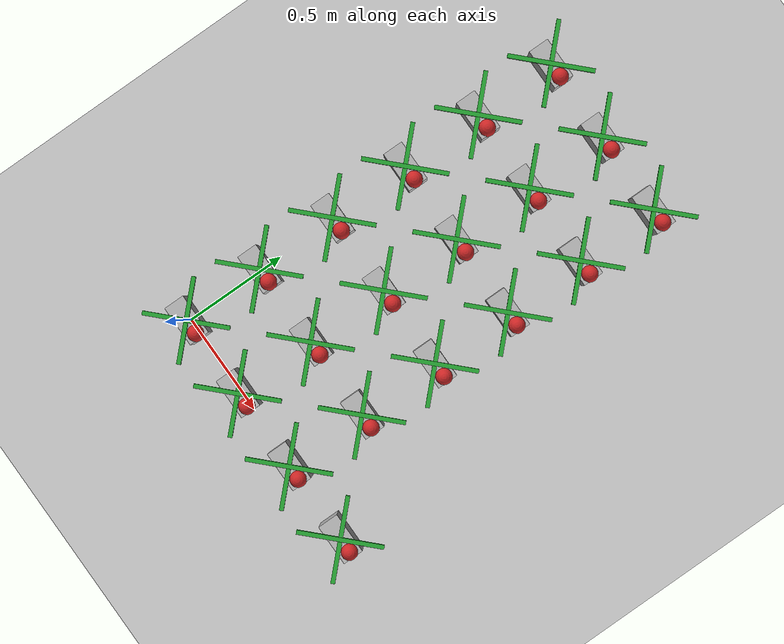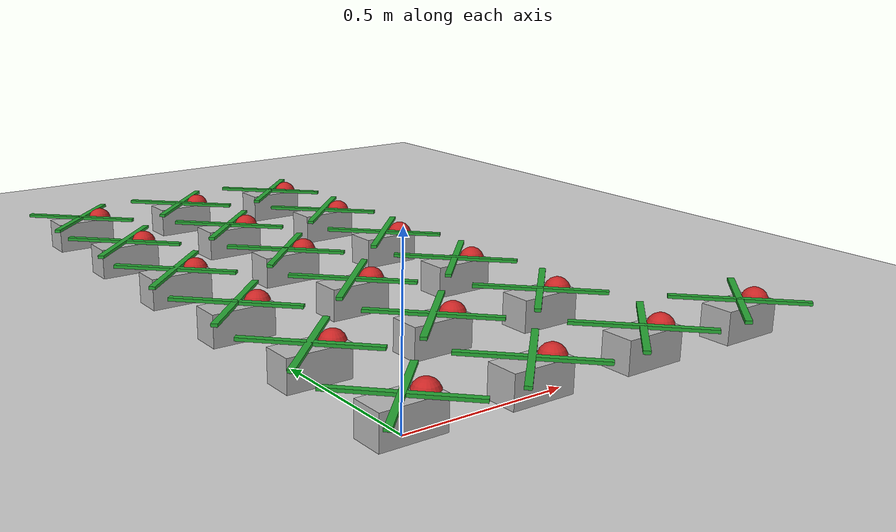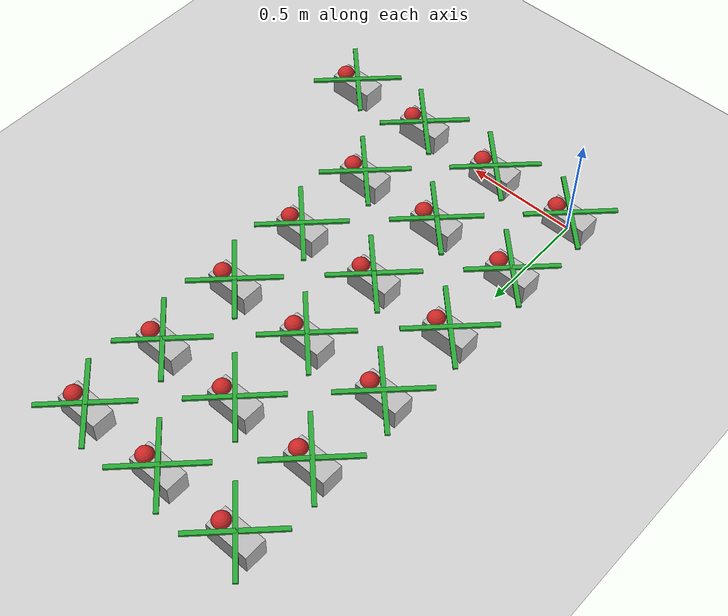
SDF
<sdf version="1.5">
 <world name="default">
  <model name="rotor_0">
   <pose>0.0 0.0 0.05 0 0 0</pose>
   <link name="link">
    <kinematic>true</kinematic>
    <gravity>false</gravity>
    <collision name="collision"><geometry><box><size>0.2 .1 .1</size></box></geometry></collision>
    <visual name="visual"><geometry><box><size>0.2 .1 .1</size></box></geometry></visual>
    <visual name="visual_front">
     <pose>0.07 0 0.04 0 0 0</pose>
     <geometry><sphere><radius>.04</radius></sphere></geometry>
     <material><script><name>Gazebo/Red</name></script></material>
    </visual>
    <visual name="visual_blade1">
     <pose>0 0 0.055 0 0 0.78539</pose>
     <geometry><box><size>.4 0.02 0.01</size></box></geometry>
     <material><script><name>Gazebo/Green</name></script></material>
    </visual>
    <visual name="visual_blade2">
     <pose>0 0 0.055 0 0 2.3562</pose>
     <geometry><box><size>.4 0.02 0.01</size></box></geometry>
     <material><script><name>Gazebo/Green</name></script></material>
    </visual>
   </link>
   <plugin name="swarm_controller_0" filename="libTeamControllerPlugin.so">
    <type>rotor</type>
    <address>192.168.2.1</address>
    <num_messages>1</num_messages>
   </plugin>
  </model>
  <model name="rotor_1">
   <pose>0.4 0.0 0.05 0 0 0</pose>
   <link name="link">
    <kinematic>true</kinematic>
    <gravity>false</gravity>
    <collision name="collision"><geometry><box><size>0.2 .1 .1</size></box></geometry></collision>
    <visual name="visual"><geometry><box><size>0.2 .1 .1</size></box></geometry></visual>
    <visual name="visual_front">
     <pose>0.07 0 0.04 0 0 0</pose>
     <geometry><sphere><radius>.04</radius></sphere></geometry>
     <material><script><name>Gazebo/Red</name></script></material>
    </visual>
    <visual name="visual_blade1">
     <pose>0 0 0.055 0 0 0.78539</pose>
     <geometry><box><size>.4 0.02 0.01</size></box></geometry>
     <material><script><name>Gazebo/Green</name></script></material>
    </visual>
    <visual name="visual_blade2">
     <pose>0 0 0.055 0 0 2.3562</pose>
     <geometry><box><size>.4 0.02 0.01</size></box></geometry>
     <material><script><name>Gazebo/Green</name></script></material>
    </visual>
   </link>
   <plugin name="swarm_controller_1" filename="libTeamControllerPlugin.so">
    <type>rotor</type>
    <address>192.168.2.2</address>
    <num_messages>1</num_messages>
   </plugin>
  </model>
  <model name="rotor_2">
   <pose>0.8 0.0 0.05 0 0 0</pose>
   <link name="link">
    <kinematic>true</kinematic>
    <gravity>false</gravity>
    <collision name="collision"><geometry><box><size>0.2 .1 .1</size></box></geometry></collision>
    <visual name="visual"><geometry><box><size>0.2 .1 .1</size></box></geometry></visual>
    <visual name="visual_front">
     <pose>0.07 0 0.04 0 0 0</pose>
     <geometry><sphere><radius>.04</radius></sphere></geometry>
     <material><script><name>Gazebo/Red</name></script></material>
    </visual>
    <visual name="visual_blade1">
     <pose>0 0 0.055 0 0 0.78539</pose>
     <geometry><box><size>.4 0.02 0.01</size></box></geometry>
     <material><script><name>Gazebo/Green</name></script></material>
    </visual>
    <visual name="visual_blade2">
     <pose>0 0 0.055 0 0 2.3562</pose>
     <geometry><box><size>.4 0.02 0.01</size></box></geometry>
     <material><script><name>Gazebo/Green</name></script></material>
    </visual>
   </link>
   <plugin name="swarm_controller_2" filename="libTeamControllerPlugin.so">
    <type>rotor</type>
    <address>192.168.2.3</address>
    <num_messages>1</num_messages>
   </plugin>
  </model>
  <model name="rotor_3">
   <pose>1.2000000000000002 0.0 0.05 0 0 0</pose>
   <link name="link">
    <kinematic>true</kinematic>
    <gravity>false</gravity>
    <collision name="collision"><geometry><box><size>0.2 .1 .1</size></box></geometry></collision>
    <visual name="visual"><geometry><box><size>0.2 .1 .1</size></box></geometry></visual>
    <visual name="visual_front">
     <pose>0.07 0 0.04 0 0 0</pose>
     <geometry><sphere><radius>.04</radius></sphere></geometry>
     <material><script><name>Gazebo/Red</name></script></material>
    </visual>
    <visual name="visual_blade1">
     <pose>0 0 0.055 0 0 0.78539</pose>
     <geometry><box><size>.4 0.02 0.01</size></box></geometry>
     <material><script><name>Gazebo/Green</name></script></material>
    </visual>
    <visual name="visual_blade2">
     <pose>0 0 0.055 0 0 2.3562</pose>
     <geometry><box><size>.4 0.02 0.01</size></box></geometry>
     <material><script><name>Gazebo/Green</name></script></material>
    </visual>
   </link>
   <plugin name="swarm_controller_3" filename="libTeamControllerPlugin.so">
    <type>rotor</type>
    <address>192.168.2.4</address>
    <num_messages>1</num_messages>
   </plugin>
  </model>
  <model name="rotor_6">
   <pose>0.0 0.4 0.05 0 0 0</pose>
   <link name="link">
    <kinematic>true</kinematic>
    <gravity>false</gravity>
    <collision name="collision"><geometry><box><size>0.2 .1 .1</size></box></geometry></collision>
    <visual name="visual"><geometry><box><size>0.2 .1 .1</size></box></geometry></visual>
    <visual name="visual_front">
     <pose>0.07 0 0.04 0 0 0</pose>
     <geometry><sphere><radius>.04</radius></sphere></geometry>
     <material><script><name>Gazebo/Red</name></script></material>
    </visual>
    <visual name="visual_blade1">
     <pose>0 0 0.055 0 0 0.78539</pose>
     <geometry><box><size>.4 0.02 0.01</size></box></geometry>
     <material><script><name>Gazebo/Green</name></script></material>
    </visual>
    <visual name="visual_blade2">
     <pose>0 0 0.055 0 0 2.3562</pose>
     <geometry><box><size>.4 0.02 0.01</size></box></geometry>
     <material><script><name>Gazebo/Green</name></script></material>
    </visual>
   </link>
   <plugin name="swarm_controller_6" filename="libTeamControllerPlugin.so">
    <type>rotor</type>
    <address>192.168.2.7</address>
    <num_messages>1</num_messages>
   </plugin>
  </model>
  <model name="rotor_7">
   <pose>0.4 0.4 0.05 0 0 0</pose>
   <link name="link">
    <kinematic>true</kinematic>
    <gravity>false</gravity>
    <collision name="collision"><geometry><box><size>0.2 .1 .1</size></box></geometry></collision>
    <visual name="visual"><geometry><box><size>0.2 .1 .1</size></box></geometry></visual>
    <visual name="visual_front">
     <pose>0.07 0 0.04 0 0 0</pose>
     <geometry><sphere><radius>.04</radius></sphere></geometry>
     <material><script><name>Gazebo/Red</name></script></material>
    </visual>
    <visual name="visual_blade1">
     <pose>0 0 0.055 0 0 0.78539</pose>
     <geometry><box><size>.4 0.02 0.01</size></box></geometry>
     <material><script><name>Gazebo/Green</name></script></material>
    </visual>
    <visual name="visual_blade2">
     <pose>0 0 0.055 0 0 2.3562</pose>
     <geometry><box><size>.4 0.02 0.01</size></box></geometry>
     <material><script><name>Gazebo/Green</name></script></material>
    </visual>
   </link>
   <plugin name="swarm_controller_7" filename="libTeamControllerPlugin.so">
    <type>rotor</type>
    <address>192.168.2.8</address>
    <num_messages>1</num_messages>
   </plugin>
  </model>
  <model name="rotor_8">
   <pose>0.8 0.4 0.05 0 0 0</pose>
   <link name="link">
    <kinematic>true</kinematic>
    <gravity>false</gravity>
    <collision name="collision"><geometry><box><size>0.2 .1 .1</size></box></geometry></collision>
    <visual name="visual"><geometry><box><size>0.2 .1 .1</size></box></geometry></visual>
    <visual name="visual_front">
     <pose>0.07 0 0.04 0 0 0</pose>
     <geometry><sphere><radius>.04</radius></sphere></geometry>
     <material><script><name>Gazebo/Red</name></script></material>
    </visual>
    <visual name="visual_blade1">
     <pose>0 0 0.055 0 0 0.78539</pose>
     <geometry><box><size>.4 0.02 0.01</size></box></geometry>
     <material><script><name>Gazebo/Green</name></script></material>
    </visual>
    <visual name="visual_blade2">
     <pose>0 0 0.055 0 0 2.3562</pose>
     <geometry><box><size>.4 0.02 0.01</size></box></geometry>
     <material><script><name>Gazebo/Green</name></script></material>
    </visual>
   </link>
   <plugin name="swarm_controller_8" filename="libTeamControllerPlugin.so">
    <type>rotor</type>
    <address>192.168.2.9</address>
    <num_messages>1</num_messages>
   </plugin>
  </model>
  <model name="rotor_12">
   <pose>0.0 0.8 0.05 0 0 0</pose>
   <link name="link">
    <kinematic>true</kinematic>
    <gravity>false</gravity>
    <collision name="collision"><geometry><box><size>0.2 .1 .1</size></box></geometry></collision>
    <visual name="visual"><geometry><box><size>0.2 .1 .1</size></box></geometry></visual>
    <visual name="visual_front">
     <pose>0.07 0 0.04 0 0 0</pose>
     <geometry><sphere><radius>.04</radius></sphere></geometry>
     <material><script><name>Gazebo/Red</name></script></material>
    </visual>
    <visual name="visual_blade1">
     <pose>0 0 0.055 0 0 0.78539</pose>
     <geometry><box><size>.4 0.02 0.01</size></box></geometry>
     <material><script><name>Gazebo/Green</name></script></material>
    </visual>
    <visual name="visual_blade2">
     <pose>0 0 0.055 0 0 2.3562</pose>
     <geometry><box><size>.4 0.02 0.01</size></box></geometry>
     <material><script><name>Gazebo/Green</name></script></material>
    </visual>
   </link>
   <plugin name="swarm_controller_12" filename="libTeamControllerPlugin.so">
    <type>rotor</type>
    <address>192.168.2.13</address>
    <num_messages>1</num_messages>
   </plugin>
  </model>
  <model name="rotor_13">
   <pose>0.4 0.8 0.05 0 0 0</pose>
   <link name="link">
    <kinematic>true</kinematic>
    <gravity>false</gravity>
    <collision name="collision"><geometry><box><size>0.2 .1 .1</size></box></geometry></collision>
    <visual name="visual"><geometry><box><size>0.2 .1 .1</size></box></geometry></visual>
    <visual name="visual_front">
     <pose>0.07 0 0.04 0 0 0</pose>
     <geometry><sphere><radius>.04</radius></sphere></geometry>
     <material><script><name>Gazebo/Red</name></script></material>
    </visual>
    <visual name="visual_blade1">
     <pose>0 0 0.055 0 0 0.78539</pose>
     <geometry><box><size>.4 0.02 0.01</size></box></geometry>
     <material><script><name>Gazebo/Green</name></script></material>
    </visual>
    <visual name="visual_blade2">
     <pose>0 0 0.055 0 0 2.3562</pose>
     <geometry><box><size>.4 0.02 0.01</size></box></geometry>
     <material><script><name>Gazebo/Green</name></script></material>
    </visual>
   </link>
   <plugin name="swarm_controller_13" filename="libTeamControllerPlugin.so">
    <type>rotor</type>
    <address>192.168.2.14</address>
    <num_messages>1</num_messages>
   </plugin>
  </model>
  <model name="rotor_14">
   <pose>0.8 0.8 0.05 0 0 0</pose>
   <link name="link">
    <kinematic>true</kinematic>
    <gravity>false</gravity>
    <collision name="collision"><geometry><box><size>0.2 .1 .1</size></box></geometry></collision>
    <visual name="visual"><geometry><box><size>0.2 .1 .1</size></box></geometry></visual>
    <visual name="visual_front">
     <pose>0.07 0 0.04 0 0 0</pose>
     <geometry><sphere><radius>.04</radius></sphere></geometry>
     <material><script><name>Gazebo/Red</name></script></material>
    </visual>
    <visual name="visual_blade1">
     <pose>0 0 0.055 0 0 0.78539</pose>
     <geometry><box><size>.4 0.02 0.01</size></box></geometry>
     <material><script><name>Gazebo/Green</name></script></material>
    </visual>
    <visual name="visual_blade2">
     <pose>0 0 0.055 0 0 2.3562</pose>
     <geometry><box><size>.4 0.02 0.01</size></box></geometry>
     <material><script><name>Gazebo/Green</name></script></material>
    </visual>
   </link>
   <plugin name="swarm_controller_14" filename="libTeamControllerPlugin.so">
    <type>rotor</type>
    <address>192.168.2.15</address>
    <num_messages>1</num_messages>
   </plugin>
  </model>
  <model name="rotor_18">
   <pose>0.0 1.2000000000000002 0.05 0 0 0</pose>
   <link name="link">
    <kinematic>true</kinematic>
    <gravity>false</gravity>
    <collision name="collision"><geometry><box><size>0.2 .1 .1</size></box></geometry></collision>
    <visual name="visual"><geometry><box><size>0.2 .1 .1</size></box></geometry></visual>
    <visual name="visual_front">
     <pose>0.07 0 0.04 0 0 0</pose>
     <geometry><sphere><radius>.04</radius></sphere></geometry>
     <material><script><name>Gazebo/Red</name></script></material>
    </visual>
    <visual name="visual_blade1">
     <pose>0 0 0.055 0 0 0.78539</pose>
     <geometry><box><size>.4 0.02 0.01</size></box></geometry>
     <material><script><name>Gazebo/Green</name></script></material>
    </visual>
    <visual name="visual_blade2">
     <pose>0 0 0.055 0 0 2.3562</pose>
     <geometry><box><size>.4 0.02 0.01</size></box></geometry>
     <material><script><name>Gazebo/Green</name></script></material>
    </visual>
   </link>
   <plugin name="swarm_controller_18" filename="libTeamControllerPlugin.so">
    <type>rotor</type>
    <address>192.168.2.19</address>
    <num_messages>1</num_messages>
   </plugin>
  </model>
  <model name="rotor_19">
   <pose>0.4 1.2000000000000002 0.05 0 0 0</pose>
   <link name="link">
    <kinematic>true</kinematic>
    <gravity>false</gravity>
    <collision name="collision"><geometry><box><size>0.2 .1 .1</size></box></geometry></collision>
    <visual name="visual"><geometry><box><size>0.2 .1 .1</size></box></geometry></visual>
    <visual name="visual_front">
     <pose>0.07 0 0.04 0 0 0</pose>
     <geometry><sphere><radius>.04</radius></sphere></geometry>
     <material><script><name>Gazebo/Red</name></script></material>
    </visual>
    <visual name="visual_blade1">
     <pose>0 0 0.055 0 0 0.78539</pose>
     <geometry><box><size>.4 0.02 0.01</size></box></geometry>
     <material><script><name>Gazebo/Green</name></script></material>
    </visual>
    <visual name="visual_blade2">
     <pose>0 0 0.055 0 0 2.3562</pose>
     <geometry><box><size>.4 0.02 0.01</size></box></geometry>
     <material><script><name>Gazebo/Green</name></script></material>
    </visual>
   </link>
   <plugin name="swarm_controller_19" filename="libTeamControllerPlugin.so">
    <type>rotor</type>
    <address>192.168.2.20</address>
    <num_messages>1</num_messages>
   </plugin>
  </model>
  <model name="rotor_20">
   <pose>0.8 1.2000000000000002 0.05 0 0 0</pose>
   <link name="link">
    <kinematic>true</kinematic>
    <gravity>false</gravity>
    <collision name="collision"><geometry><box><size>0.2 .1 .1</size></box></geometry></collision>
    <visual name="visual"><geometry><box><size>0.2 .1 .1</size></box></geometry></visual>
    <visual name="visual_front">
     <pose>0.07 0 0.04 0 0 0</pose>
     <geometry><sphere><radius>.04</radius></sphere></geometry>
     <material><script><name>Gazebo/Red</name></script></material>
    </visual>
    <visual name="visual_blade1">
     <pose>0 0 0.055 0 0 0.78539</pose>
     <geometry><box><size>.4 0.02 0.01</size></box></geometry>
     <material><script><name>Gazebo/Green</name></script></material>
    </visual>
    <visual name="visual_blade2">
     <pose>0 0 0.055 0 0 2.3562</pose>
     <geometry><box><size>.4 0.02 0.01</size></box></geometry>
     <material><script><name>Gazebo/Green</name></script></material>
    </visual>
   </link>
   <plugin name="swarm_controller_20" filename="libTeamControllerPlugin.so">
    <type>rotor</type>
    <address>192.168.2.21</address>
    <num_messages>1</num_messages>
   </plugin>
  </model>
  <model name="rotor_24">
   <pose>0.0 1.6 0.05 0 0 0</pose>
   <link name="link">
    <kinematic>true</kinematic>
    <gravity>false</gravity>
    <collision name="collision"><geometry><box><size>0.2 .1 .1</size></box></geometry></collision>
    <visual name="visual"><geometry><box><size>0.2 .1 .1</size></box></geometry></visual>
    <visual name="visual_front">
     <pose>0.07 0 0.04 0 0 0</pose>
     <geometry><sphere><radius>.04</radius></sphere></geometry>
     <material><script><name>Gazebo/Red</name></script></material>
    </visual>
    <visual name="visual_blade1">
     <pose>0 0 0.055 0 0 0.78539</pose>
     <geometry><box><size>.4 0.02 0.01</size></box></geometry>
     <material><script><name>Gazebo/Green</name></script></material>
    </visual>
    <visual name="visual_blade2">
     <pose>0 0 0.055 0 0 2.3562</pose>
     <geometry><box><size>.4 0.02 0.01</size></box></geometry>
     <material><script><name>Gazebo/Green</name></script></material>
    </visual>
   </link>
   <plugin name="swarm_controller_24" filename="libTeamControllerPlugin.so">
    <type>rotor</type>
    <address>192.168.2.25</address>
    <num_messages>1</num_messages>
   </plugin>
  </model>
  <model name="rotor_25">
   <pose>0.4 1.6 0.05 0 0 0</pose>
   <link name="link">
    <kinematic>true</kinematic>
    <gravity>false</gravity>
    <collision name="collision"><geometry><box><size>0.2 .1 .1</size></box></geometry></collision>
    <visual name="visual"><geometry><box><size>0.2 .1 .1</size></box></geometry></visual>
    <visual name="visual_front">
     <pose>0.07 0 0.04 0 0 0</pose>
     <geometry><sphere><radius>.04</radius></sphere></geometry>
     <material><script><name>Gazebo/Red</name></script></material>
    </visual>
    <visual name="visual_blade1">
     <pose>0 0 0.055 0 0 0.78539</pose>
     <geometry><box><size>.4 0.02 0.01</size></box></geometry>
     <material><script><name>Gazebo/Green</name></script></material>
    </visual>
    <visual name="visual_blade2">
     <pose>0 0 0.055 0 0 2.3562</pose>
     <geometry><box><size>.4 0.02 0.01</size></box></geometry>
     <material><script><name>Gazebo/Green</name></script></material>
    </visual>
   </link>
   <plugin name="swarm_controller_25" filename="libTeamControllerPlugin.so">
    <type>rotor</type>
    <address>192.168.2.26</address>
    <num_messages>1</num_messages>
   </plugin>
  </model>
  <model name="rotor_26">
   <pose>0.8 1.6 0.05 0 0 0</pose>
   <link name="link">
    <kinematic>true</kinematic>
    <gravity>false</gravity>
    <collision name="collision"><geometry><box><size>0.2 .1 .1</size></box></geometry></collision>
    <visual name="visual"><geometry><box><size>0.2 .1 .1</size></box></geometry></visual>
    <visual name="visual_front">
     <pose>0.07 0 0.04 0 0 0</pose>
     <geometry><sphere><radius>.04</radius></sphere></geometry>
     <material><script><name>Gazebo/Red</name></script></material>
    </visual>
    <visual name="visual_blade1">
     <pose>0 0 0.055 0 0 0.78539</pose>
     <geometry><box><size>.4 0.02 0.01</size></box></geometry>
     <material><script><name>Gazebo/Green</name></script></material>
    </visual>
    <visual name="visual_blade2">
     <pose>0 0 0.055 0 0 2.3562</pose>
     <geometry><box><size>.4 0.02 0.01</size></box></geometry>
     <material><script><name>Gazebo/Green</name></script></material>
    </visual>
   </link>
   <plugin name="swarm_controller_26" filename="libTeamControllerPlugin.so">
    <type>rotor</type>
    <address>192.168.2.27</address>
    <num_messages>1</num_messages>
   </plugin>
  </model>
  <model name="rotor_30">
   <pose>0.0 2.0 0.05 0 0 0</pose>
   <link name="link">
    <kinematic>true</kinematic>
    <gravity>false</gravity>
    <collision name="collision"><geometry><box><size>0.2 .1 .1</size></box></geometry></collision>
    <visual name="visual"><geometry><box><size>0.2 .1 .1</size></box></geometry></visual>
    <visual name="visual_front">
     <pose>0.07 0 0.04 0 0 0</pose>
     <geometry><sphere><radius>.04</radius></sphere></geometry>
     <material><script><name>Gazebo/Red</name></script></material>
    </visual>
    <visual name="visual_blade1">
     <pose>0 0 0.055 0 0 0.78539</pose>
     <geometry><box><size>.4 0.02 0.01</size></box></geometry>
     <material><script><name>Gazebo/Green</name></script></material>
    </visual>
    <visual name="visual_blade2">
     <pose>0 0 0.055 0 0 2.3562</pose>
     <geometry><box><size>.4 0.02 0.01</size></box></geometry>
     <material><script><name>Gazebo/Green</name></script></material>
    </visual>
   </link>
   <plugin name="swarm_controller_30" filename="libTeamControllerPlugin.so">
    <type>rotor</type>
    <address>192.168.2.31</address>
    <num_messages>1</num_messages>
   </plugin>
  </model>
  <model name="rotor_31">
   <pose>0.4 2.0 0.05 0 0 0</pose>
   <link name="link">
    <kinematic>true</kinematic>
    <gravity>false</gravity>
    <collision name="collision"><geometry><box><size>0.2 .1 .1</size></box></geometry></collision>
    <visual name="visual"><geometry><box><size>0.2 .1 .1</size></box></geometry></visual>
    <visual name="visual_front">
     <pose>0.07 0 0.04 0 0 0</pose>
     <geometry><sphere><radius>.04</radius></sphere></geometry>
     <material><script><name>Gazebo/Red</name></script></material>
    </visual>
    <visual name="visual_blade1">
     <pose>0 0 0.055 0 0 0.78539</pose>
     <geometry><box><size>.4 0.02 0.01</size></box></geometry>
     <material><script><name>Gazebo/Green</name></script></material>
    </visual>
    <visual name="visual_blade2">
     <pose>0 0 0.055 0 0 2.3562</pose>
     <geometry><box><size>.4 0.02 0.01</size></box></geometry>
     <material><script><name>Gazebo/Green</name></script></material>
    </visual>
   </link>
   <plugin name="swarm_controller_31" filename="libTeamControllerPlugin.so">
    <type>rotor</type>
    <address>192.168.2.32</address>
    <num_messages>1</num_messages>
   </plugin>
  </model>
  <model name="rotor_32">
   <pose>0.8 2.0 0.05 0 0 0</pose>
   <link name="link">
    <kinematic>true</kinematic>
    <gravity>false</gravity>
    <collision name="collision"><geometry><box><size>0.2 .1 .1</size></box></geometry></collision>
    <visual name="visual"><geometry><box><size>0.2 .1 .1</size></box></geometry></visual>
    <visual name="visual_front">
     <pose>0.07 0 0.04 0 0 0</pose>
     <geometry><sphere><radius>.04</radius></sphere></geometry>
     <material><script><name>Gazebo/Red</name></script></material>
    </visual>
    <visual name="visual_blade1">
     <pose>0 0 0.055 0 0 0.78539</pose>
     <geometry><box><size>.4 0.02 0.01</size></box></geometry>
     <material><script><name>Gazebo/Green</name></script></material>
    </visual>
    <visual name="visual_blade2">
     <pose>0 0 0.055 0 0 2.3562</pose>
     <geometry><box><size>.4 0.02 0.01</size></box></geometry>
     <material><script><name>Gazebo/Green</name></script></material>
    </visual>
   </link>
   <plugin name="swarm_controller_32" filename="libTeamControllerPlugin.so">
    <type>rotor</type>
    <address>192.168.2.33</address>
    <num_messages>1</num_messages>
   </plugin>
  </model>
  <model name="ground_plane">
   <static>true</static>
   <link name="link">
    <collision name="collision">
     <geometry><plane><normal>0 0 1</normal><size>10000 10000</size></plane></geometry>
     <surface><friction><ode><mu>100</mu><mu2>50</mu2></ode></friction></surface>
    </collision>
    <visual name="visual">
     <cast_shadows>false</cast_shadows>
     <geometry><plane><normal>0 0 1</normal><size>10000 10000</size></plane></geometry>
     <material>
      <script><uri>file://media/materials/scripts/gazebo.material</uri><name>Gazebo/Grey</name></script>
     </material>
    </visual>
   </link>
  </model>
 </world>
</sdf>
